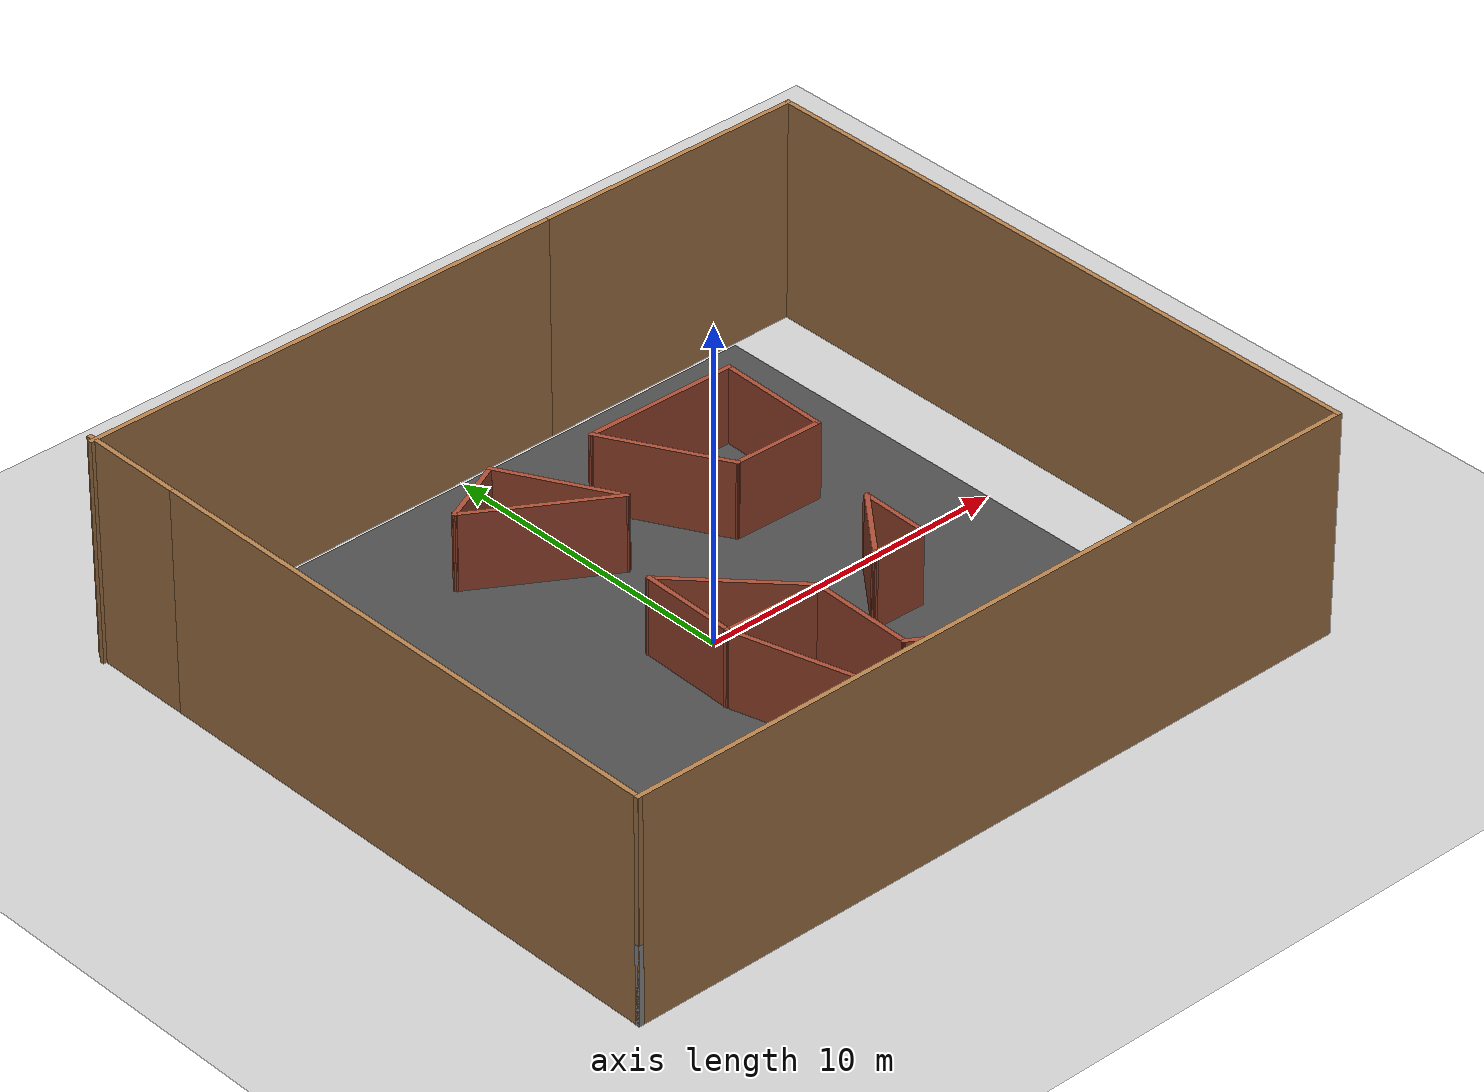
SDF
<sdf version="1.6">
 <world name="default">
  <light name="sun" type="directional">
   <pose>0 0 10 0 -0 0</pose>
   <diffuse>0.8 0.8 0.8 1</diffuse>
   <specular>0.2 0.2 0.2 1</specular>
   <attenuation>
    <range>1000</range>
    <constant>0.9</constant>
    <linear>0.01</linear>
    <quadratic>0.001</quadratic>
   </attenuation>
   <direction>-0.5 0.1 -0.9</direction>
  </light>
  <model name="ground_plane">
   <static>1</static>
   <link name="link">
    <collision name="collision">
     <geometry><plane><normal>0 0 1</normal><size>100 100</size></plane></geometry>
     <surface><friction><ode><mu>100</mu><mu2>50</mu2></ode></friction></surface>
    </collision>
    <visual name="visual">
     <cast_shadows>0</cast_shadows>
     <geometry><plane><normal>0 0 1</normal><size>100 100</size></plane></geometry>
     <material>
      <script><uri>file://media/materials/scripts/gazebo.material</uri><name>Gazebo/Grey</name></script>
     </material>
    </visual>
   </link>
  </model>
  <model name="asphalt_plane">
   <static>1</static>
   <link name="link">
    <collision name="collision"><geometry><box><size>20 20 0.1</size></box></geometry></collision>
    <visual name="visual">
     <cast_shadows>0</cast_shadows>
     <geometry><box><size>20 20 0.1</size></box></geometry>
     <material>
      <script>
       <uri>model://asphalt_plane/materials/scripts</uri>
       <uri>model://asphalt_plane/materials/textures</uri>
       <name>vrc/asphalt</name>
      </script>
     </material>
    </visual>
   </link>
  </model>
  <physics name="default_physics" default="0" type="ode">
   <ode>
    <solver>
     <type>quick</type>
     <iters>10</iters>
     <sor>1.3</sor>
     <use_dynamic_moi_rescaling>0</use_dynamic_moi_rescaling>
    </solver>
    <constraints>
     <cfm>0</cfm>
     <erp>0.2</erp>
     <contact_max_correcting_vel>100</contact_max_correcting_vel>
     <contact_surface_layer>0.001</contact_surface_layer>
    </constraints>
   </ode>
   <max_step_size>0.004</max_step_size>
   <real_time_factor>1</real_time_factor>
   <real_time_update_rate>250</real_time_update_rate>
  </physics>
  <gravity>0 0 -9.8066</gravity>
  <magnetic_field>6e-06 2.3e-05 -4.2e-05</magnetic_field>
  <atmosphere type="adiabatic"/>
  <scene><ambient>0.4 0.4 0.4 1</ambient><background>0.7 0.7 0.7 1</background><shadows>1</shadows></scene>
  <spherical_coordinates>
   <surface_model>EARTH_WGS84</surface_model>
   <latitude_deg>0</latitude_deg>
   <longitude_deg>0</longitude_deg>
   <elevation>0</elevation>
   <heading_deg>0</heading_deg>
  </spherical_coordinates>
  <model name="wall_all">
   <pose>-0.0773 -0.08909 0 0 -0 0</pose>
   <link name="Wall_10">
    <collision name="Wall_10_Collision">
     <geometry><box><size>17.75 0.15 7</size></box></geometry>
     <pose>0 0 3.5 0 -0 0</pose>
    </collision>
    <visual name="Wall_10_Visual">
     <pose>0 0 3.5 0 -0 0</pose>
     <geometry><box><size>17.75 0.15 7</size></box></geometry>
     <material>
      <script><uri>file://media/materials/scripts/gazebo.material</uri><name>Gazebo/Wood</name></script>
      <ambient>1 1 1 1</ambient>
     </material>
     <meta><layer>0</layer></meta>
    </visual>
    <pose>-12.115 -1.675 0 0 -0 1.5708</pose>
   </link>
   <link name="Wall_11">
    <collision name="Wall_11_Collision">
     <geometry><box><size>3.5 0.15 7</size></box></geometry>
     <pose>0 0 3.5 0 -0 0</pose>
    </collision>
    <visual name="Wall_11_Visual">
     <pose>0 0 3.5 0 -0 0</pose>
     <geometry><box><size>3.5 0.15 7</size></box></geometry>
     <material>
      <script><uri>file://media/materials/scripts/gazebo.material</uri><name>Gazebo/Wood</name></script>
      <ambient>1 1 1 1</ambient>
     </material>
     <meta><layer>0</layer></meta>
    </visual>
    <pose>-12.115 8.8 0 0 -0 1.5708</pose>
   </link>
   <link name="Wall_2">
    <collision name="Wall_2_Collision">
     <geometry><box><size>15.703 0.15 7</size></box></geometry>
     <pose>0 0 3.5 0 -0 0</pose>
    </collision>
    <visual name="Wall_2_Visual">
     <pose>0 0 3.5 0 -0 0</pose>
     <geometry><box><size>15.703 0.15 7</size></box></geometry>
     <material>
      <script><uri>file://media/materials/scripts/gazebo.material</uri><name>Gazebo/Wood</name></script>
      <ambient>1 1 1 1</ambient>
     </material>
     <meta><layer>0</layer></meta>
    </visual>
    <pose>-4.4485 10.297 0 0 -0 3.14159</pose>
   </link>
   <link name="Wall_5">
    <collision name="Wall_5_Collision">
     <geometry><box><size>9.04652 0.15 7</size></box></geometry>
     <pose>0 0 3.5 0 -0 0</pose>
    </collision>
    <visual name="Wall_5_Visual">
     <pose>0 0 3.5 0 -0 0</pose>
     <geometry><box><size>9.04652 0.15 7</size></box></geometry>
     <material>
      <script><uri>file://media/materials/scripts/gazebo.material</uri><name>Gazebo/Wood</name></script>
      <ambient>1 1 1 1</ambient>
     </material>
     <meta><layer>0</layer></meta>
    </visual>
    <pose>7.7765 10.297 0 0 -0 0</pose>
   </link>
   <link name="Wall_6">
    <collision name="Wall_6_Collision">
     <geometry><box><size>20.9219 0.15 7</size></box></geometry>
     <pose>0 0 3.5 0 -0 0</pose>
    </collision>
    <visual name="Wall_6_Visual">
     <pose>0 0 3.5 0 -0 0</pose>
     <geometry><box><size>20.9219 0.15 7</size></box></geometry>
     <material>
      <script><uri>file://media/materials/scripts/gazebo.material</uri><name>Gazebo/Wood</name></script>
      <ambient>1 1 1 1</ambient>
     </material>
     <meta><layer>0</layer></meta>
    </visual>
    <pose>12.225 -0.089 0 0 -0 -1.5708</pose>
   </link>
   <link name="Wall_7">
    <collision name="Wall_7_Collision">
     <geometry><box><size>0.15 0.15 2.5</size></box></geometry>
     <pose>0 0 1.25 0 -0 0</pose>
    </collision>
    <visual name="Wall_7_Visual">
     <pose>0 0 1.25 0 -0 0</pose>
     <geometry><box><size>0.15 0.15 2.5</size></box></geometry>
     <material>
      <script><uri>file://media/materials/scripts/gazebo.material</uri><name>Gazebo/Grey</name></script>
      <ambient>1 1 1 1</ambient>
     </material>
     <meta><layer>0</layer></meta>
    </visual>
    <pose>12.225 -10.475 0 0 -0 0</pose>
   </link>
   <link name="Wall_8">
    <collision name="Wall_8_Collision">
     <geometry><box><size>24.5 0.15 7</size></box></geometry>
     <pose>0 0 3.5 0 -0 0</pose>
    </collision>
    <visual name="Wall_8_Visual">
     <pose>0 0 3.5 0 -0 0</pose>
     <geometry><box><size>24.5 0.15 7</size></box></geometry>
     <material>
      <script><uri>file://media/materials/scripts/gazebo.material</uri><name>Gazebo/Wood</name></script>
      <ambient>1 1 1 1</ambient>
     </material>
     <meta><layer>0</layer></meta>
    </visual>
    <pose>0.049999 -10.475 0 0 -0 3.14159</pose>
   </link>
   <link name="Wall_9">
    <collision name="Wall_9_Collision">
     <geometry><box><size>0.16 0.15 2.5</size></box></geometry>
     <pose>0 0 1.25 0 -0 0</pose>
    </collision>
    <visual name="Wall_9_Visual">
     <pose>0 0 1.25 0 -0 0</pose>
     <geometry><box><size>0.16 0.15 2.5</size></box></geometry>
     <material>
      <script><uri>file://media/materials/scripts/gazebo.material</uri><name>Gazebo/Grey</name></script>
      <ambient>1 1 1 1</ambient>
     </material>
     <meta><layer>0</layer></meta>
    </visual>
    <pose>-12.12 -10.475 0 0 -0 0</pose>
   </link>
   <static>1</static>
  </model>
  <model name="Untitled2">
   <pose>1.41924 -0.6488 0 0 0 -1.59713</pose>
   <link name="Wall_10">
    <collision name="Wall_10_Collision">
     <geometry><box><size>1.75 0.15 2.5</size></box></geometry>
     <pose>0 0 1.25 0 -0 0</pose>
    </collision>
    <visual name="Wall_10_Visual">
     <pose>0 0 1.25 0 -0 0</pose>
     <geometry><box><size>1.75 0.15 2.5</size></box></geometry>
     <material>
      <script><uri>file://media/materials/scripts/gazebo.material</uri><name>Gazebo/Bricks</name></script>
      <ambient>1 1 1 1</ambient>
     </material>
     <meta><layer>0</layer></meta>
    </visual>
    <pose>1.67157 2.96406 0 0 -0 1.5708</pose>
   </link>
   <link name="Wall_11">
    <collision name="Wall_11_Collision">
     <geometry><box><size>2.25 0.15 2.5</size></box></geometry>
     <pose>0 0 1.25 0 -0 0</pose>
    </collision>
    <visual name="Wall_11_Visual">
     <pose>0 0 1.25 0 -0 0</pose>
     <geometry><box><size>2.25 0.15 2.5</size></box></geometry>
     <material>
      <script><uri>file://media/materials/scripts/gazebo.material</uri><name>Gazebo/Bricks</name></script>
      <ambient>1 1 1 1</ambient>
     </material>
     <meta><layer>0</layer></meta>
    </visual>
    <pose>0.621566 3.76406 0 0 -0 3.14159</pose>
   </link>
   <link name="Wall_12">
    <collision name="Wall_12_Collision">
     <geometry><box><size>2.79008 0.15 2.5</size></box></geometry>
     <pose>0 0 1.25 0 -0 0</pose>
    </collision>
    <visual name="Wall_12_Visual">
     <pose>0 0 1.25 0 -0 0</pose>
     <geometry><box><size>2.79008 0.15 2.5</size></box></geometry>
     <material>
      <script><uri>file://media/materials/scripts/gazebo.material</uri><name>Gazebo/Bricks</name></script>
      <ambient>1 1 1 1</ambient>
     </material>
     <meta><layer>0</layer></meta>
    </visual>
    <pose>0.621566 2.96406 0 0 -0 -0.651077</pose>
   </link>
   <link name="Wall_14">
    <collision name="Wall_14_Collision">
     <geometry><box><size>4.53406 0.15 2.5</size></box></geometry>
     <pose>0 0 1.25 0 -0 0</pose>
    </collision>
    <visual name="Wall_14_Visual">
     <pose>0 0 1.25 0 -0 0</pose>
     <geometry><box><size>4.53406 0.15 2.5</size></box></geometry>
     <material>
      <script><uri>file://media/materials/scripts/gazebo.material</uri><name>Gazebo/Bricks</name></script>
      <ambient>1 1 1 1</ambient>
     </material>
     <meta><layer>0</layer></meta>
    </visual>
    <pose>0.221566 -1.49594 0 0 -0 -2.35619</pose>
   </link>
   <link name="Wall_16">
    <collision name="Wall_16_Collision">
     <geometry><box><size>3.75 0.15 2.5</size></box></geometry>
     <pose>0 0 1.25 0 -0 0</pose>
    </collision>
    <visual name="Wall_16_Visual">
     <pose>0 0 1.25 0 -0 0</pose>
     <geometry><box><size>3.75 0.15 2.5</size></box></geometry>
     <material>
      <script><uri>file://media/materials/scripts/gazebo.material</uri><name>Gazebo/Bricks</name></script>
      <ambient>1 1 1 1</ambient>
     </material>
     <meta><layer>0</layer></meta>
    </visual>
    <pose>-5.61939 5.0377 0 0 -0 0</pose>
   </link>
   <link name="Wall_17">
    <collision name="Wall_17_Collision">
     <geometry><box><size>3 0.15 2.5</size></box></geometry>
     <pose>0 0 1.25 0 -0 0</pose>
    </collision>
    <visual name="Wall_17_Visual">
     <pose>0 0 1.25 0 -0 0</pose>
     <geometry><box><size>3 0.15 2.5</size></box></geometry>
     <material>
      <script><uri>file://media/materials/scripts/gazebo.material</uri><name>Gazebo/Bricks</name></script>
      <ambient>1 1 1 1</ambient>
     </material>
     <meta><layer>0</layer></meta>
    </visual>
    <pose>-3.81939 3.61269 0 0 -0 -1.5708</pose>
   </link>
   <link name="Wall_18">
    <collision name="Wall_18_Collision">
     <geometry><box><size>4.25 0.15 2.5</size></box></geometry>
     <pose>0 0 1.25 0 -0 0</pose>
    </collision>
    <visual name="Wall_18_Visual">
     <pose>0 0 1.25 0 -0 0</pose>
     <geometry><box><size>4.25 0.15 2.5</size></box></geometry>
     <material>
      <script><uri>file://media/materials/scripts/gazebo.material</uri><name>Gazebo/Bricks</name></script>
      <ambient>1 1 1 1</ambient>
     </material>
     <meta><layer>0</layer></meta>
    </visual>
    <pose>-5.59474 1.1627 0 0 -0 -2.61799</pose>
   </link>
   <link name="Wall_19">
    <collision name="Wall_19_Collision">
     <geometry><box><size>5.05025 0.15 2.5</size></box></geometry>
     <pose>0 0 1.25 0 -0 0</pose>
    </collision>
    <visual name="Wall_19_Visual">
     <pose>0 0 1.25 0 -0 0</pose>
     <geometry><box><size>5.05025 0.15 2.5</size></box></geometry>
     <material>
      <script><uri>file://media/materials/scripts/gazebo.material</uri><name>Gazebo/Bricks</name></script>
      <ambient>1 1 1 1</ambient>
     </material>
     <meta><layer>0</layer></meta>
    </visual>
    <pose>-7.39474 2.5877 0 0 -0 1.58086</pose>
   </link>
   <link name="Wall_26">
    <collision name="Wall_26_Collision">
     <geometry><box><size>5.75 0.15 2.5</size></box></geometry>
     <pose>0 0 1.25 0 -0 0</pose>
    </collision>
    <visual name="Wall_26_Visual">
     <pose>0 0 1.25 0 -0 0</pose>
     <geometry><box><size>5.75 0.15 2.5</size></box></geometry>
     <material>
      <script><uri>file://media/materials/scripts/gazebo.material</uri><name>Gazebo/Bricks</name></script>
      <ambient>1 1 1 1</ambient>
     </material>
     <meta><layer>0</layer></meta>
    </visual>
    <pose>6.52157 2.47893 0 0 -0 1.0472</pose>
   </link>
   <link name="Wall_27">
    <collision name="Wall_27_Collision">
     <geometry><box><size>7 0.15 2.5</size></box></geometry>
     <pose>0 0 1.25 0 -0 0</pose>
    </collision>
    <visual name="Wall_27_Visual">
     <pose>0 0 1.25 0 -0 0</pose>
     <geometry><box><size>7 0.15 2.5</size></box></geometry>
     <material>
      <script><uri>file://media/materials/scripts/gazebo.material</uri><name>Gazebo/Bricks</name></script>
      <ambient>1 1 1 1</ambient>
     </material>
     <meta><layer>0</layer></meta>
    </visual>
    <pose>7.03511 1.5955 0 0 -0 -1.8326</pose>
   </link>
   <link name="Wall_28">
    <collision name="Wall_28_Collision">
     <geometry><box><size>4.72561 0.15 2.5</size></box></geometry>
     <pose>0 0 1.25 0 -0 0</pose>
    </collision>
    <visual name="Wall_28_Visual">
     <pose>0 0 1.25 0 -0 0</pose>
     <geometry><box><size>4.72561 0.15 2.5</size></box></geometry>
     <material>
      <script><uri>file://media/materials/scripts/gazebo.material</uri><name>Gazebo/Bricks</name></script>
      <ambient>1 1 1 1</ambient>
     </material>
     <meta><layer>0</layer></meta>
    </visual>
    <pose>3.96011 -2.37937 0 0 -0 -2.84594</pose>
   </link>
   <link name="Wall_3">
    <collision name="Wall_3_Collision">
     <geometry><box><size>3.25 0.15 2.5</size></box></geometry>
     <pose>0 0 1.25 0 -0 0</pose>
    </collision>
    <visual name="Wall_3_Visual">
     <pose>0 0 1.25 0 -0 0</pose>
     <geometry><box><size>3.25 0.15 2.5</size></box></geometry>
     <material>
      <script><uri>file://media/materials/scripts/gazebo.material</uri><name>Gazebo/Bricks</name></script>
      <ambient>1 1 1 1</ambient>
     </material>
     <meta><layer>0</layer></meta>
    </visual>
    <pose>0.221566 -3.04594 0 0 -0 0</pose>
   </link>
   <link name="Wall_30">
    <collision name="Wall_30_Collision">
     <geometry><box><size>4 0.15 2.5</size></box></geometry>
     <pose>0 0 1.25 0 -0 0</pose>
    </collision>
    <visual name="Wall_30_Visual">
     <pose>0 0 1.25 0 -0 0</pose>
     <geometry><box><size>4 0.15 2.5</size></box></geometry>
     <material>
      <script><uri>file://media/materials/scripts/gazebo.material</uri><name>Gazebo/Bricks</name></script>
      <ambient>1 1 1 1</ambient>
     </material>
     <meta><layer>0</layer></meta>
    </visual>
    <pose>-6.25447 -1.98978 0 0 -0 0.523599</pose>
   </link>
   <link name="Wall_31">
    <collision name="Wall_31_Collision">
     <geometry><box><size>4.75 0.15 2.5</size></box></geometry>
     <pose>0 0 1.25 0 -0 0</pose>
    </collision>
    <visual name="Wall_31_Visual">
     <pose>0 0 1.25 0 -0 0</pose>
     <geometry><box><size>4.75 0.15 2.5</size></box></geometry>
     <material>
      <script><uri>file://media/materials/scripts/gazebo.material</uri><name>Gazebo/Bricks</name></script>
      <ambient>1 1 1 1</ambient>
     </material>
     <meta><layer>0</layer></meta>
    </visual>
    <pose>-5.73737 -3.01913 0 0 -0 -2.0944</pose>
   </link>
   <link name="Wall_32">
    <collision name="Wall_32_Collision">
     <geometry><box><size>2.45388 0.15 2.5</size></box></geometry>
     <pose>0 0 1.25 0 -0 0</pose>
    </collision>
    <visual name="Wall_32_Visual">
     <pose>0 0 1.25 0 -0 0</pose>
     <geometry><box><size>2.45388 0.15 2.5</size></box></geometry>
     <material>
      <script><uri>file://media/materials/scripts/gazebo.material</uri><name>Gazebo/Bricks</name></script>
      <ambient>1 1 1 1</ambient>
     </material>
     <meta><layer>0</layer></meta>
    </visual>
    <pose>-7.40447 -3.98163 0 0 -0 2.03632</pose>
   </link>
   <link name="Wall_4">
    <collision name="Wall_4_Collision">
     <geometry><box><size>0.15 0.15 2.5</size></box></geometry>
     <pose>0 0 1.25 0 -0 0</pose>
    </collision>
    <visual name="Wall_4_Visual">
     <pose>0 0 1.25 0 -0 0</pose>
     <geometry><box><size>0.15 0.15 2.5</size></box></geometry>
     <material>
      <script><uri>file://media/materials/scripts/gazebo.material</uri><name>Gazebo/Grey</name></script>
      <ambient>1 1 1 1</ambient>
     </material>
     <meta><layer>0</layer></meta>
    </visual>
    <pose>1.77157 -3.04594 0 0 -0 0</pose>
   </link>
   <link name="Wall_5">
    <collision name="Wall_5_Collision">
     <geometry><box><size>3.25 0.15 2.5</size></box></geometry>
     <pose>0 0 1.25 0 -0 0</pose>
    </collision>
    <visual name="Wall_5_Visual">
     <pose>0 0 1.25 0 -0 0</pose>
     <geometry><box><size>3.25 0.15 2.5</size></box></geometry>
     <material>
      <script><uri>file://media/materials/scripts/gazebo.material</uri><name>Gazebo/Bricks</name></script>
      <ambient>1 1 1 1</ambient>
     </material>
     <meta><layer>0</layer></meta>
    </visual>
    <pose>1.77157 -1.49594 0 0 -0 1.5708</pose>
   </link>
   <link name="Wall_6">
    <collision name="Wall_6_Collision">
     <geometry><box><size>0.15 0.15 2.5</size></box></geometry>
     <pose>0 0 1.25 0 -0 0</pose>
    </collision>
    <visual name="Wall_6_Visual">
     <pose>0 0 1.25 0 -0 0</pose>
     <geometry><box><size>0.15 0.15 2.5</size></box></geometry>
     <material>
      <script><uri>file://media/materials/scripts/gazebo.material</uri><name>Gazebo/Grey</name></script>
      <ambient>1 1 1 1</ambient>
     </material>
     <meta><layer>0</layer></meta>
    </visual>
    <pose>1.77157 0.054057 0 0 -0 0</pose>
   </link>
   <link name="Wall_7">
    <collision name="Wall_7_Collision">
     <geometry><box><size>3.5 0.15 2.5</size></box></geometry>
     <pose>0 0 1.25 0 -0 0</pose>
    </collision>
    <visual name="Wall_7_Visual">
     <pose>0 0 1.25 0 -0 0</pose>
     <geometry><box><size>3.5 0.15 2.5</size></box></geometry>
     <material>
      <script><uri>file://media/materials/scripts/gazebo.material</uri><name>Gazebo/Bricks</name></script>
      <ambient>1 1 1 1</ambient>
     </material>
     <meta><layer>0</layer></meta>
    </visual>
    <pose>3.44657 0.054057 0 0 -0 0</pose>
   </link>
   <static>1</static>
  </model>
 </world>
</sdf>
